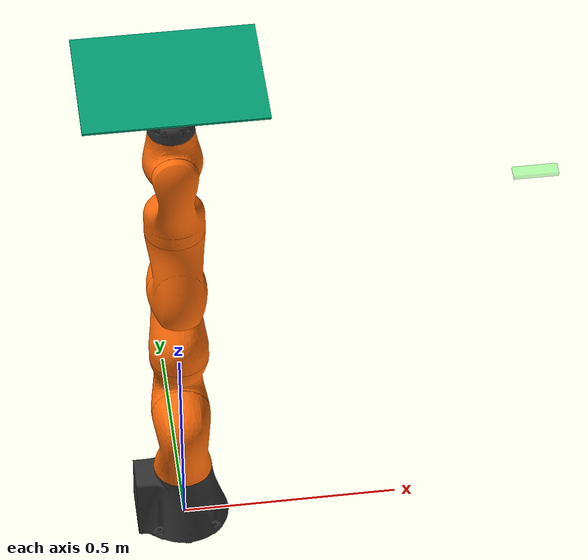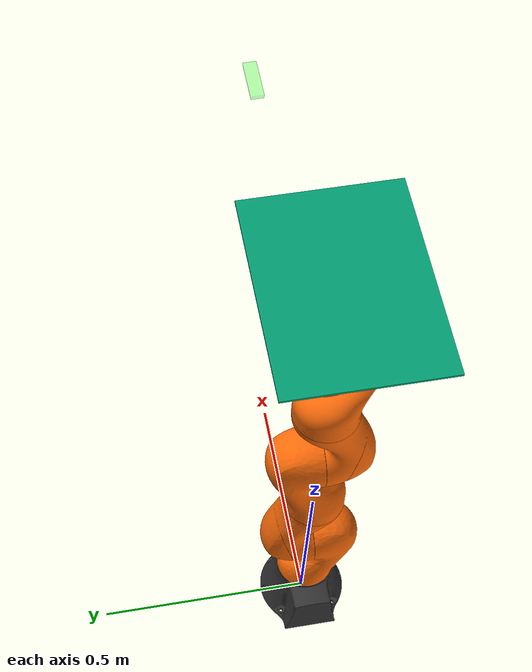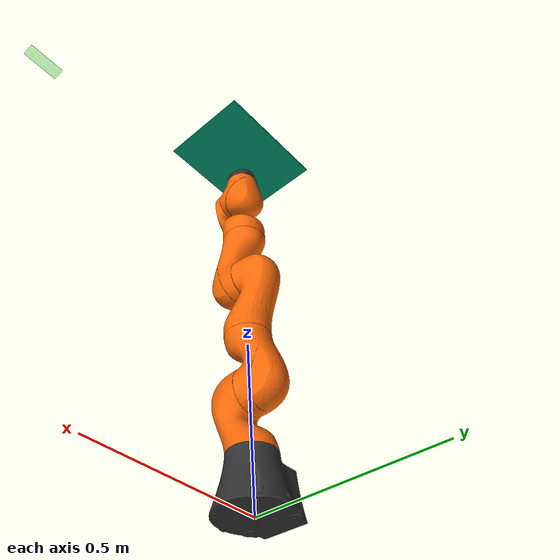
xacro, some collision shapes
<?xml version="1.0"?>

<!-- Here we define the robot, we named it "iiwa7_aruco", because we attach an aruco board on its end effector -->
<robot xmlns:xacro="http://www.ros.org/wiki/xacro" name="iiwa7_aruco">

  <!-- Import Rviz colors -->
  <xacro:include filename="$(find iiwa_description)/urdf/materials.xacro" />
  <!--Import the iiwa7 macro -->
  <xacro:include filename="$(find iiwa_description)/urdf/iiwa7.xacro"/>

  <!--  Arguments for the iiwa7 macro  -->
  <xacro:arg name="hardware_interface" default="PositionJointInterface"/>
  <xacro:arg name="robot_name" default="iiwa"/>

  <link name="world"/>

  <gazebo reference="world">
    <static>true</static>
  </gazebo>

  <!-- Here we insert an iiwa7 robot in the scene, it's origin is just on top of the box previously defined. You can use 0,0,0 if you don't have that. -->
  <xacro:iiwa7 hardware_interface="$(arg hardware_interface)" robot_name="$(arg robot_name)" parent="world">
    <origin xyz="0 0 0" rpy="0 0 0"/>
  </xacro:iiwa7>

  <!-- Tool properties -->
  <xacro:property name="tool_mass" value="0.200" />
  <xacro:property name="tool_joint_offset" value="0.00 0.00 0.10" />
  <xacro:property name="tool_link_offset" value="0.20 0.15 0.00" />

  <!--  Here we define a dummy joint between the tip of the iiwa7 and the base of the tool.
  There is no offset between the two, that means the tool is attached at the robot flange. -->
  <joint name="tool_joint" type="fixed">
    <parent link="iiwa_link_ee" />
    <child link = "tool_link" />
    <origin xyz="${tool_joint_offset}" rpy="0 0 0" />
  </joint>

  <link name="tool_link">
    <visual>
      <origin xyz="0 0 0" rpy="0 0 0"/>
      <geometry>
        <!-- Replace with thin box to represent ArUco board -->
        <mesh filename="package://hand_eye_calibration/assets/aruco_board.dae"/>
      </geometry>
    </visual>
    <collision>
      <origin xyz="0 0 0" rpy="0 0 0"/>
      <geometry>
        <!-- Thin box for collision representation -->
        <box size="0.40 0.30 0.005"/>
      </geometry>
    </collision>
  </link>

  <!--  Here we define another dummy joint. It is placed at the end of the tool, so we can then attach a frame at its TCP for control -->
  <joint name="tool_tip_joint" type="fixed">
    <parent link="tool_link" />
    <child link = "tool_link_ee" />
    <origin xyz="${tool_link_offset}" rpy="0 0 ${pi}" />
  </joint>

  <!--  The TCP frame is here defined -->
  <link name="tool_link_ee"/>

  <!-- attach a camera frame -->
  <link name="base_camera_link">
    <visual>
      <origin xyz="0 0 0" rpy="0 0 0" />
      <geometry>
        <box size="0.1 0.03 0.01" />
      </geometry>
      <material name="cam_color">
        <color rgba="0. 1. 0. 0.3" />
      </material>
    </visual>
    <inertial>
      <origin xyz="0 0 0" rpy="0 0 0" />
      <mass value="0.01" />
      <inertia ixx="0.1" ixy="0.0" ixz="0.0" iyy="0.1" iyz="0.0" izz="0.1" />
    </inertial>
  </link>

  <joint name="camera_joint" type="fixed">
    <parent link="world" />
    <child link="base_camera_link" />
    <origin xyz="0.8 0 1.0" rpy="${pi} ${pi} 0" />
  </joint>

  <joint name="camera_optical_joint" type="fixed">
    <!-- these values have to be these values otherwise the gazebo camera
        image won't be aligned properly with the frame it is supposedly
        originating from -->
    <origin xyz="0 0 0" rpy="${-pi/2} 0 ${-pi/2}"/>
    <parent link="base_camera_link"/>
    <child link="base_camera_link_optical"/>
  </joint>

  <link name="base_camera_link_optical">
  </link>

  <gazebo reference="base_camera_link">
    <sensor type="camera" name="base_camera">
      <update_rate>10.0</update_rate>
      <camera name="camera">
        <horizontal_fov>1.396</horizontal_fov>
        <image>
          <width>640</width>
          <height>480</height>
          <format>R8G8B8</format>
        </image>
        <clip>
          <near>0.02</near>
          <far>30</far>
        </clip>
        <noise>
          <type>gaussian</type>
          <mean>0.0</mean>
          <stddev>0.007</stddev>
        </noise>
      </camera>
      <plugin name="camera_controller" filename="libgazebo_ros_camera.so">
        <alwaysOn>true</alwaysOn>
        <updateRate>0.0</updateRate>
        <cameraName>iiwa_base/camera</cameraName>
        <imageTopicName>image_raw</imageTopicName>
        <cameraInfoTopicName>camera_info</cameraInfoTopicName>
        <frameName>base_camera_link_optical</frameName>
        <hackBaseline>0.07</hackBaseline>
        <distortionK1>0.0</distortionK1>
        <distortionK2>0.0</distortionK2>
        <distortionK3>0.0</distortionK3>
        <distortionT1>0.0</distortionT1>
        <distortionT2>0.0</distortionT2>
      </plugin>
    </sensor>
  </gazebo>

</robot>

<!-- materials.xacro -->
<robot>

  <material name="Black">
    <color rgba="0.0 0.0 0.0 1.0"/>
  </material>

  <material name="Blue">
    <color rgba="0.0 0.0 0.8 1.0"/>
  </material>

  <material name="Green">
    <color rgba="0.0 0.8 0.0 1.0"/>
  </material>

  <material name="Grey">
    <color rgba="0.2 0.2 0.2 1.0"/>
  </material>

  <material name="Orange">
    <color rgba="${255/255} ${108/255} ${10/255} 1.0"/>
  </material>

  <material name="Brown">
    <color rgba="${222/255} ${207/255} ${195/255} 1.0"/>
  </material>

  <material name="Red">
    <color rgba="0.8 0.0 0.0 1.0"/>
  </material>

  <material name="White">
    <color rgba="1.0 1.0 1.0 1.0"/>
  </material>

</robot>

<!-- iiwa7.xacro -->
<robot xmlns:xacro="http://www.ros.org/wiki/xacro">

  <!-- Import all Gazebo-customization elements, including Gazebo colors -->
  <xacro:include filename="$(find iiwa_description)/urdf/iiwa.gazebo.xacro" />
  <!-- Import Transmissions -->
  <xacro:include filename="$(find iiwa_description)/urdf/iiwa.transmission.xacro" />
  <!-- Include Utilities -->
  <xacro:include filename="$(find iiwa_description)/urdf/utilities.xacro" />

  <!-- some constants -->
  <xacro:property name="safety_controller_k_pos" value="100" />
  <xacro:property name="safety_controller_k_vel" value="2" />
  <xacro:property name="joint_damping" value="0.5" />
  <xacro:property name="max_effort" value="300"/>
  <xacro:property name="max_velocity" value="10"/>

  <xacro:macro name="iiwa7" params="parent hardware_interface robot_name *origin">

    <!--joint between {parent} and link_0-->
    <joint name="${parent}_${robot_name}_joint" type="fixed">
      <xacro:insert_block name="origin"/>
      <parent link="${parent}"/>
      <child link="${robot_name}_link_0"/>
    </joint>

    <link name="${robot_name}_link_0">
      <inertial>
        <origin xyz="-0.1 0 0.07" rpy="0 0 0"/>
        <mass value="5"/>
        <inertia ixx="0.05"  ixy="0"  ixz="0" iyy="0.06" iyz="0" izz="0.03" />
      </inertial>

      <visual>
        <origin xyz="0 0 0" rpy="0 0 0"/>
        <geometry>
          <mesh filename="package://iiwa_description/meshes/iiwa7/visual/link_0.stl"/>
        </geometry>
        <material name="Grey"/>
      </visual>

      <collision>
        <origin xyz="0 0 0" rpy="0 0 0"/>
        <geometry>
          <mesh filename="package://iiwa_description/meshes/iiwa7/collision/link_0.stl"/>
        </geometry>
      </collision>

    </link>

    <!-- joint between link_0 and link_1 -->
    <joint name="${robot_name}_joint_1" type="revolute">
      <parent link="${robot_name}_link_0"/>
      <child link="${robot_name}_link_1"/>
      <origin xyz="0 0 0.15" rpy="0 0 0"/>
      <axis xyz="0 0 1"/>
      <limit lower="${-170 * PI / 180}" upper="${170 * PI / 180}"
             effort="${max_effort}" velocity="${max_velocity}" />
      <safety_controller soft_lower_limit="${-168 * PI / 180}"
                         soft_upper_limit="${168 * PI / 180}"
                         k_position="${safety_controller_k_pos}"
                         k_velocity="${safety_controller_k_vel}"/>
      <dynamics damping="${joint_damping}"/>
    </joint>

    <link name="${robot_name}_link_1">
      <inertial>
        <origin xyz="0 -0.03 0.12" rpy="0 0 0"/>
        <mass value="3.4525"/>
        <inertia ixx="0.02183"  ixy="0"  ixz="0" iyy="0.007703" iyz="-0.003887" izz="0.02083" />
      </inertial>
      <visual>
        <origin xyz="0 0 0.0075" rpy="0 0 0"/>
        <geometry>
          <mesh filename="package://iiwa_description/meshes/iiwa7/visual/link_1.stl"/>
        </geometry>
        <material name="Orange"/>
      </visual>
      <collision>
        <origin xyz="0 0 0.0075" rpy="0 0 0"/>
        <geometry>
          <mesh filename="package://iiwa_description/meshes/iiwa7/collision/link_1.stl"/>
        </geometry>
      </collision>
    </link>

    <joint name="${robot_name}_joint_2" type="revolute">
      <parent link="${robot_name}_link_1"/>
      <child link="${robot_name}_link_2"/>
      <origin xyz="0 0 0.19" rpy="${PI / 2}   0 ${PI}"/>
      <axis xyz="0 0 1"/>
      <limit lower="${-120 * PI / 180}" upper="${120 * PI / 180}"
             effort="${max_effort}" velocity="${max_velocity}" />
      <safety_controller soft_lower_limit="${-118 * PI / 180}"
                         soft_upper_limit="${118 * PI / 180}"
                         k_position="${safety_controller_k_pos}"
                         k_velocity="${safety_controller_k_vel}"/>
      <dynamics damping="${joint_damping}"/>
    </joint>

    <link name="${robot_name}_link_2">
      <inertial>
        <origin xyz="0.0003 0.059 0.042" rpy="0 0 0"/>
        <mass value="3.4821"/>
        <inertia ixx="0.02076"  ixy="0"  ixz="-0.003626" iyy="0.02179" iyz="0" izz="0.00779" />
      </inertial>
      <visual>
        <origin xyz="0 0 0" rpy="0 0 0"/>
        <geometry>
          <mesh filename="package://iiwa_description/meshes/iiwa7/visual/link_2.stl"/>
        </geometry>
        <material name="Orange"/>
      </visual>

      <collision>
        <origin xyz="0 0 0" rpy="0 0 0"/>
        <geometry>
          <mesh filename="package://iiwa_description/meshes/iiwa7/collision/link_2.stl"/>
        </geometry>
      </collision>
    </link>

    <joint name="${robot_name}_joint_3" type="revolute">
      <parent link="${robot_name}_link_2"/>
      <child link="${robot_name}_link_3"/>
      <origin xyz="0 0.21 0" rpy="${PI / 2} 0 ${PI}"/>
      <axis xyz="0 0 1"/>
      <limit lower="${-170 * PI / 180}" upper="${170 * PI / 180}"
             effort="${max_effort}" velocity="${max_velocity}" />
      <safety_controller soft_lower_limit="${-168 * PI / 180}"
                         soft_upper_limit="${168 * PI / 180}"
                         k_position="${safety_controller_k_pos}"
                         k_velocity="${safety_controller_k_vel}"/>
      <dynamics damping="${joint_damping}"/>
    </joint>

    <link name="${robot_name}_link_3">
      <inertial>
        <origin xyz="0 0.03 0.13" rpy="0 0 0"/>
        <mass value="4.05623"/>
        <inertia ixx="0.03204"  ixy="0"  ixz="0" iyy="0.00972" iyz="0.006227" izz="0.03042" />
      </inertial>

      <visual>
        <origin xyz="0 0 -0.026" rpy="0 0 0"/>
        <geometry>
          <mesh filename="package://iiwa_description/meshes/iiwa7/visual/link_3.stl"/>
        </geometry>
        <material name="Orange"/>
      </visual>

      <collision>
        <origin xyz="0 0 -0.026" rpy="0 0 0"/>
        <geometry>
          <mesh filename="package://iiwa_description/meshes/iiwa7/collision/link_3.stl"/>
        </geometry>
      </collision>

    </link>

    <joint name="${robot_name}_joint_4" type="revolute">
      <parent link="${robot_name}_link_3"/>
      <child link="${robot_name}_link_4"/>
      <origin xyz="0 0 0.19" rpy="${PI / 2} 0 0"/>
      <axis xyz="0 0 1"/>
      <limit lower="${-120 * PI / 180}" upper="${120 * PI / 180}"
             effort="${max_effort}" velocity="${max_velocity}" />
      <safety_controller soft_lower_limit="${-118 * PI / 180}"
                         soft_upper_limit="${118 * PI / 180}"
                         k_position="${safety_controller_k_pos}"
                         k_velocity="${safety_controller_k_vel}"/>
      <dynamics damping="${joint_damping}"/>
    </joint>

    <link name="${robot_name}_link_4">
      <inertial>
        <origin xyz="0 0.067 0.034" rpy="0 0 0"/>
        <mass value="3.4822"/>
        <inertia ixx="0.02178"  ixy="0"  ixz="0" iyy="0.02075" iyz="-0.003625" izz="0.007785" />
      </inertial>

      <visual>
        <origin xyz="0 0 0" rpy="0 0 0"/>
        <geometry>
          <mesh filename="package://iiwa_description/meshes/iiwa7/visual/link_4.stl"/>
        </geometry>
        <material name="Orange"/>
      </visual>

      <collision>
        <origin xyz="0 0 0" rpy="0 0 0"/>
        <geometry>
          <mesh filename="package://iiwa_description/meshes/iiwa7/collision/link_4.stl"/>
        </geometry>
      </collision>
    </link>

    <joint name="${robot_name}_joint_5" type="revolute">
      <parent link="${robot_name}_link_4"/>
      <child link="${robot_name}_link_5"/>
      <origin xyz="0 0.21 0" rpy="${-PI / 2} ${PI} 0"/>
      <axis xyz="0 0 1"/>
      <limit lower="${-170 * PI / 180}" upper="${170 * PI / 180}"
             effort="${max_effort}" velocity="${max_velocity}" />
      <safety_controller soft_lower_limit="${-168 * PI / 180}"
                         soft_upper_limit="${168 * PI / 180}"
                         k_position="${safety_controller_k_pos}"
                         k_velocity="${safety_controller_k_vel}"/>
      <dynamics damping="${joint_damping}"/>
    </joint>

    <link name="${robot_name}_link_5">
      <inertial>
        <origin xyz="0.0001 0.021 0.076" rpy="0 0 0"/>
        <mass value="2.1633"/>
        <inertia ixx="0.01287"  ixy="0"  ixz="0" iyy="0.005708" iyz="-0.003946" izz="0.01112" />
      </inertial>

      <visual>
        <origin xyz="0 0 -0.026" rpy="0 0 0"/>
        <geometry>
          <mesh filename="package://iiwa_description/meshes/iiwa7/visual/link_5.stl"/>
        </geometry>
        <material name="Orange"/>
      </visual>

      <collision>
        <origin xyz="0 0 -0.026" rpy="0 0 0"/>
        <geometry>
          <mesh filename="package://iiwa_description/meshes/iiwa7/collision/link_5.stl"/>
        </geometry>
      </collision>
    </link>

    <joint name="${robot_name}_joint_6" type="revolute">
      <parent link="${robot_name}_link_5"/>
      <child link="${robot_name}_link_6"/>
      <origin xyz="0 0.06070 0.19" rpy="${PI / 2} 0 0"/>
      <axis xyz="0 0 1"/>
      <limit lower="${-120 * PI / 180}" upper="${120 * PI / 180}"
             effort="${max_effort}" velocity="${max_velocity}" />
      <safety_controller soft_lower_limit="${-118 * PI / 180}"
                         soft_upper_limit="${118 * PI / 180}"
                         k_position="${safety_controller_k_pos}"
                         k_velocity="${safety_controller_k_vel}"/>
      <dynamics damping="${joint_damping}"/>
    </joint>

    <link name="${robot_name}_link_6">
      <inertial>
        <origin xyz="0 0.0006 0.0004" rpy="0 0 0"/>
        <mass value="2.3466"/>
        <inertia ixx="0.006509"  ixy="0"  ixz="0" iyy="0.006259" iyz="0.00031891" izz="0.004527" />
      </inertial>

      <visual>
        <origin xyz="0 0 0" rpy="0 0 0"/>
        <geometry>
          <mesh filename="package://iiwa_description/meshes/iiwa7/visual/link_6.stl"/>
        </geometry>
        <material name="Orange"/>
      </visual>

      <collision>
        <origin xyz="0 0 0" rpy="0 0 0"/>
        <geometry>
          <mesh filename="package://iiwa_description/meshes/iiwa7/collision/link_6.stl"/>
        </geometry>
      </collision>
    </link>

    <joint name="${robot_name}_joint_7" type="revolute">
      <parent link="${robot_name}_link_6"/>
      <child link="${robot_name}_link_7"/>
      <origin xyz="0 0.081 0.06070" rpy="${- PI / 2} ${PI} 0"/>
      <axis xyz="0 0 1"/>
      <limit lower="${-175 * PI / 180}" upper="${175 * PI / 180}"
             effort="${max_effort}" velocity="${max_velocity}" />
      <safety_controller soft_lower_limit="${-173 * PI / 180}"
                         soft_upper_limit="${173 * PI / 180}"
                         k_position="${safety_controller_k_pos}"
                         k_velocity="${safety_controller_k_vel}"/>
      <dynamics damping="${joint_damping}"/>
    </joint>

    <link name="${robot_name}_link_7">
      <inertial>
        <origin xyz="0 0 0.02" rpy="0 0 0"/>
        <mass value="3.129"/>
        <inertia ixx="0.01464"  ixy="0.0005912"  ixz="0" iyy="0.01465" iyz="0" izz="0.002872" />
      </inertial>

      <visual>
        <origin xyz="0 0 -0.0005" rpy="0 0 0"/>
        <geometry>
          <mesh filename="package://iiwa_description/meshes/iiwa7/visual/link_7.stl"/>
        </geometry>
        <material name="Grey"/>
      </visual>

      <collision>
        <origin xyz="0 0 -0.0005" rpy="0 0 0"/>
        <geometry>
          <mesh filename="package://iiwa_description/meshes/iiwa7/collision/link_7.stl"/>
        </geometry>
      </collision>
    </link>

    <joint name="${robot_name}_joint_ee" type="fixed">
      <parent link="${robot_name}_link_7"/>
      <child link="${robot_name}_link_ee"/>
      <origin xyz="0 0 0.045" rpy="0 0 0"/>
    </joint>

    <link name="${robot_name}_link_ee">
    </link>

    <!--Extensions -->
    <xacro:iiwa_gazebo robot_name="${robot_name}" />
    <xacro:iiwa_transmission hardware_interface="${hardware_interface}"/>

  </xacro:macro>

</robot>

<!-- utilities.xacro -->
<robot name="iiwa" xmlns:xacro="http://www.ros.org/wiki/xacro">

  <xacro:property name="PI" value="3.1415926535897931"/>

<!-- The following macros are adapted from the LWR 4 definitions of the RCPRG - https://github.com/RCPRG-ros-pkg/lwr_robot -->
  <!--Little helper macros to define the inertia matrix needed for links.-->
  <!--Cuboid-->
  <xacro:macro name="cuboid_inertia" params="width height length mass">
    <inertia ixx="${mass * (height * height + length * length) / 12)}"
             iyy="${mass * (width * width + length * length) / 12)}"
             izz="${mass * (width * width + height * height) / 12)}"
             ixy="0" iyz="0" ixz="0"/>
  </xacro:macro>

  <!--Cylinder: length is along the y-axis! -->
  <xacro:macro name="cylinder_inertia" params="radius length mass">
    <inertia ixx="${mass * (3 * radius * radius + length * length) / 12)}"
             iyy="${mass * radius* radius / 2)}"
             izz="${mass * (3 * radius * radius + length * length) / 12)}"
             ixy="0" iyz="0" ixz="0"/>
  </xacro:macro>

</robot>
